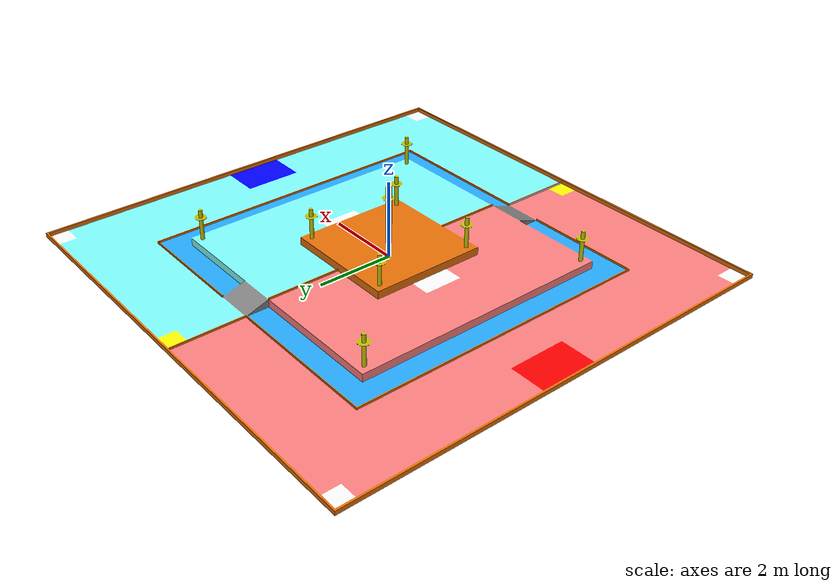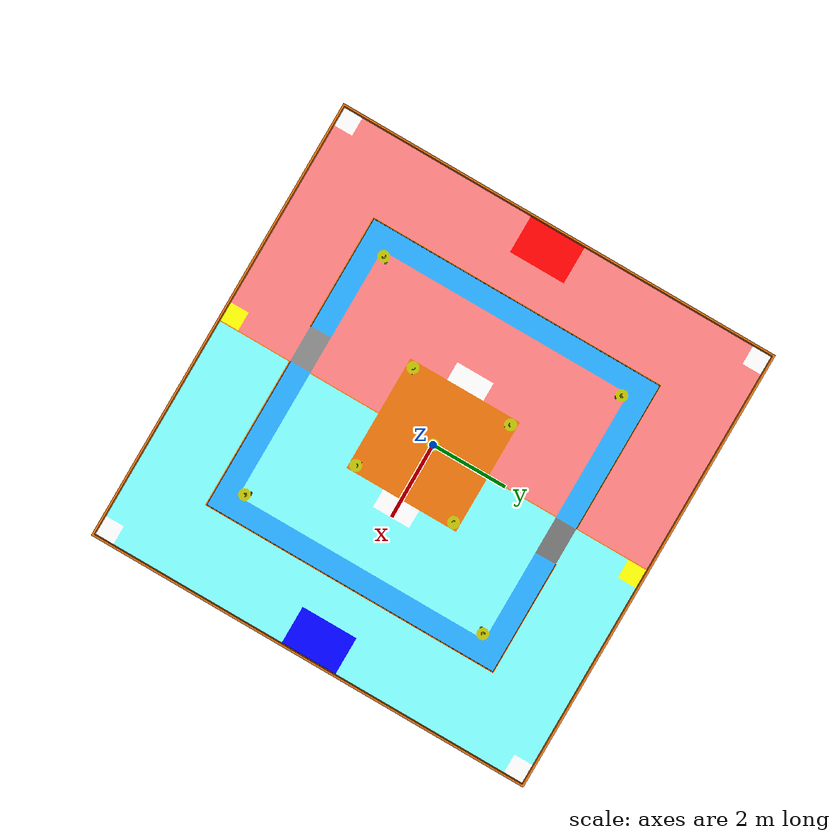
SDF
<?xml version="1.0"?>
<sdf version="1.6">
  <world name="default">
    <include>
      <uri>model://sun</uri>
    </include>

    <model name="nhk2023">
      <static>true</static>
      <link name="link">
        <inertial>
          <mass>1.0</mass>
          <inertia>
            <ixx>1.0</ixx>
            <ixy>0.0</ixy>
            <ixz>0.0</ixz>
            <iyy>1.0</iyy>
            <iyz>0.0</iyz>
            <izz>1.0</izz>
          </inertia>
        </inertial>
        <visual name="visual">
          <!-- include mesh -->
          <geometry>
            <mesh>
              <uri>model://field2023/meshes/field_NHK.dae</uri>
              <scale>1.001 1.001 1.001</scale>
            </mesh>
          </geometry>
        </visual>
        <collision name="collision">
          <geometry>
            <mesh>
              <uri>model://field2023/meshes/field_NHK.dae</uri>
              <scale>1 1 1</scale>
            </mesh>
          </geometry>
        </collision>
      </link>
    </model>
  </world>
</sdf>
